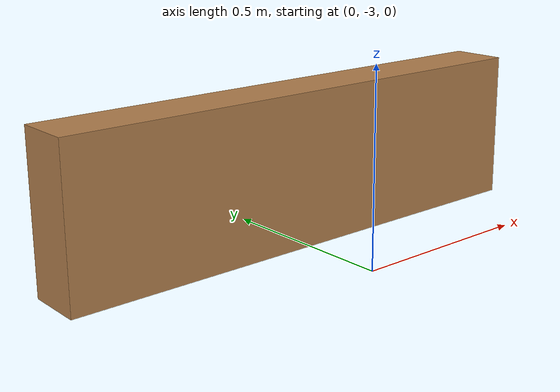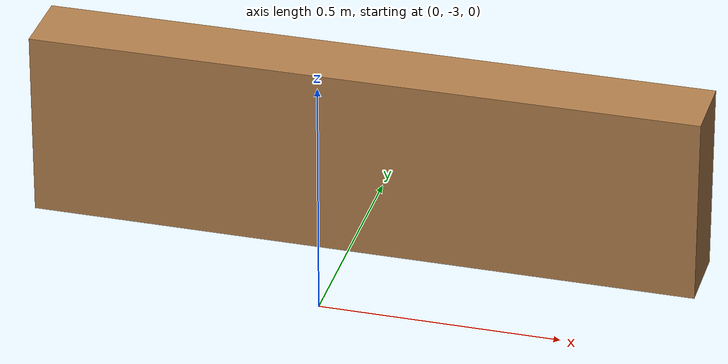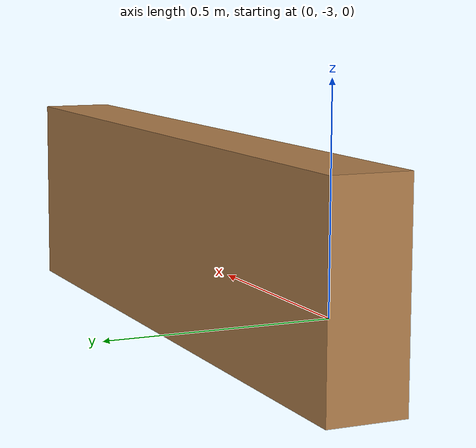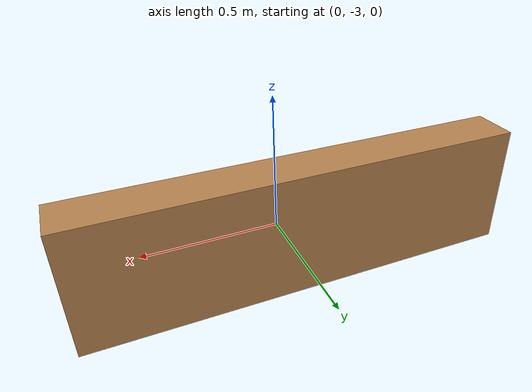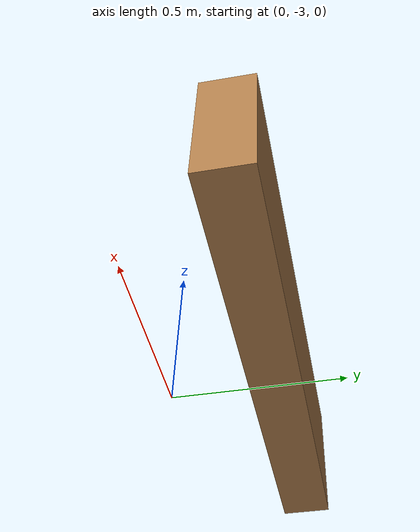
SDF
<?xml version='1.0'?>
<sdf version='1.6'>
  <model name='wall1m4'>
    <pose frame=''>0.025 -1.3875 0 0 -0 0</pose>
    <link name='Wall_0'>
      <collision name='Wall_0_Collision'>
        <geometry>
          <box>
            <size>1.4 0.15 0.4</size>
          </box>
        </geometry>
        <pose frame=''>0 0 0.2 0 -0 0</pose>
      </collision>
      <visual name='Wall_0_Visual'>
        <pose frame=''>0 0 0.2 0 -0 0</pose>
        <geometry>
          <box>
            <size>1.4 0.15 0.4</size>
          </box>
        </geometry>
        <material>
          <script>
            <uri>file://media/materials/scripts/gazebo.material</uri>
            <name>Gazebo/Wood</name>
          </script>
          <ambient>1 1 1 1</ambient>
        </material>
        <meta>
          <layer>0</layer>
        </meta>
      </visual>
      <pose frame=''>0 -1.3125 0 0 -0 3.14159</pose>
    </link>
    <static>1</static>
  </model>
</sdf>
